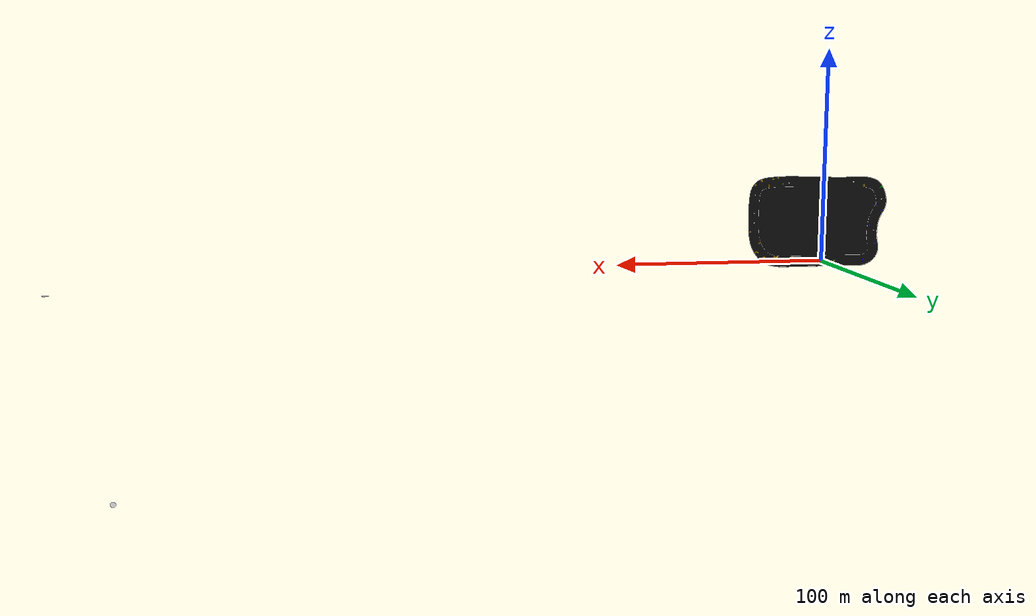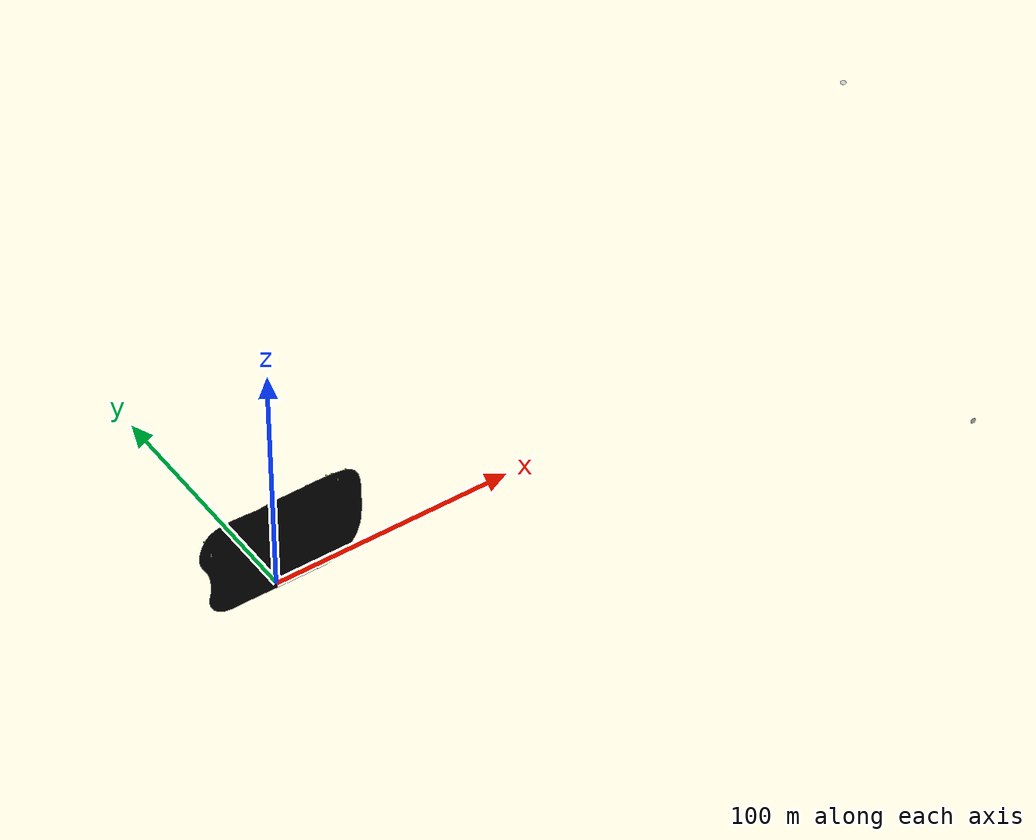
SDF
<?xml version="1.0" ?>
<sdf version="1.9">
  <model name="ugvc_track">
    <static>true</static>
    <pose>0 0 0 -1.5708 0 0</pose>
    <link name="link">
      <visual name="visual">
        <geometry>
          <mesh>
            <uri>model://ugvc_track/meshes/jaiblender.dae</uri>
            <scale>1 1 1</scale>
          </mesh>
        </geometry>
      </visual>
      <collision name="collision">
        <geometry>
          <mesh>
            <uri>model://ugvc_track/meshes/jaiblender.dae</uri>
          </mesh>
        </geometry>
      </collision>
    </link>
  </model>
</sdf>
